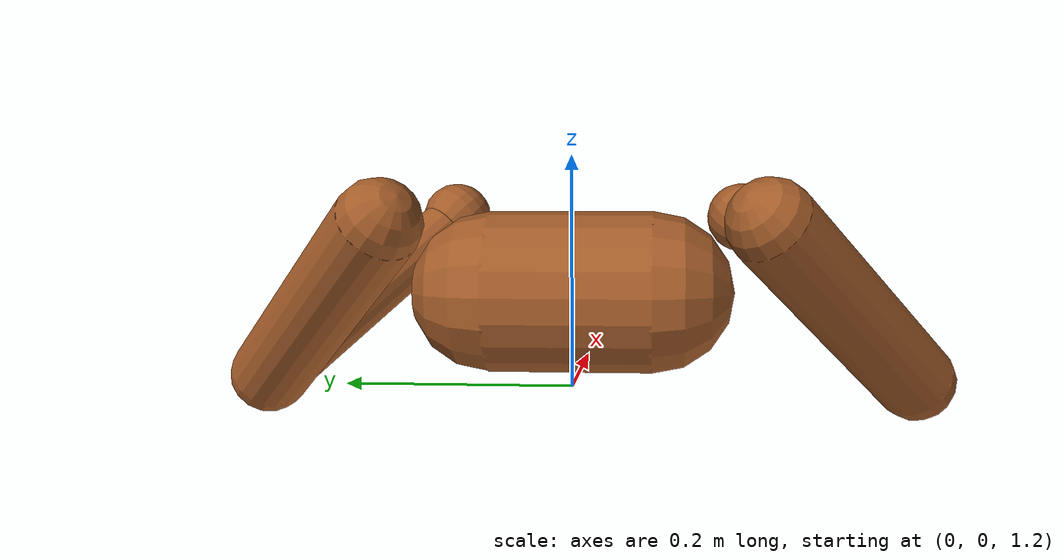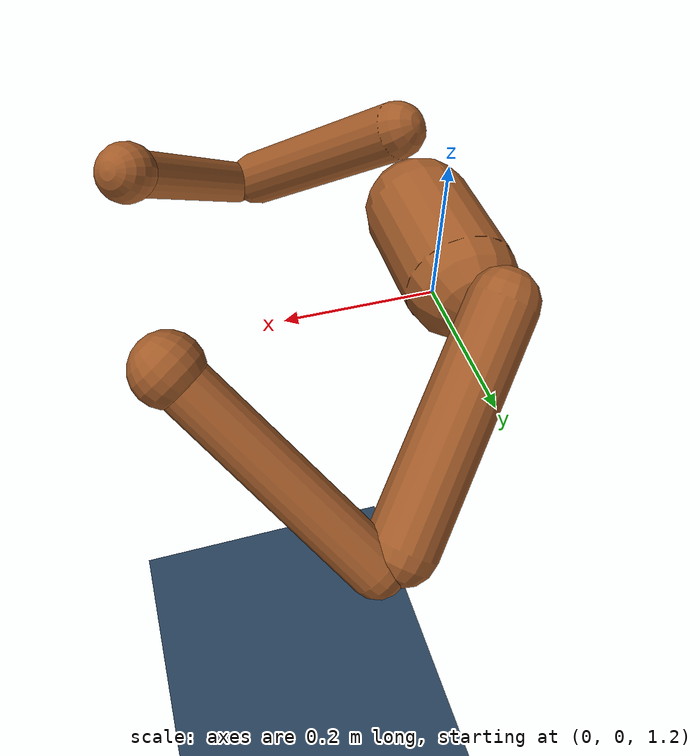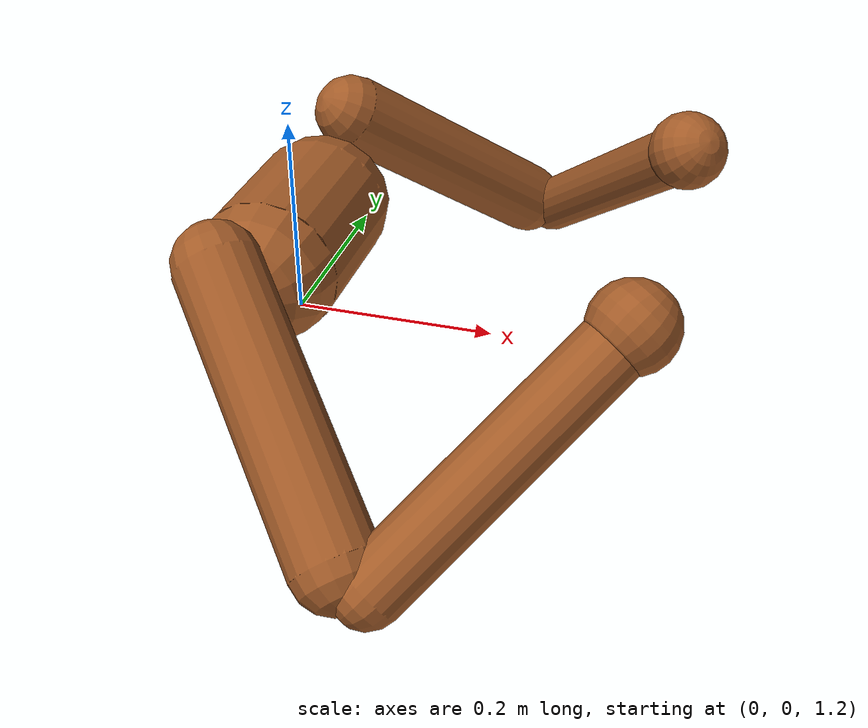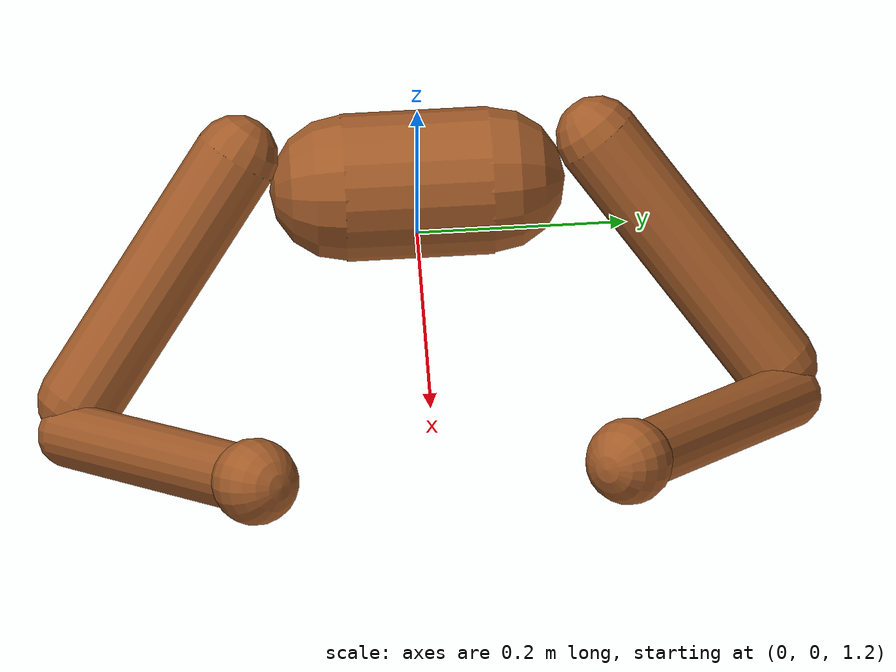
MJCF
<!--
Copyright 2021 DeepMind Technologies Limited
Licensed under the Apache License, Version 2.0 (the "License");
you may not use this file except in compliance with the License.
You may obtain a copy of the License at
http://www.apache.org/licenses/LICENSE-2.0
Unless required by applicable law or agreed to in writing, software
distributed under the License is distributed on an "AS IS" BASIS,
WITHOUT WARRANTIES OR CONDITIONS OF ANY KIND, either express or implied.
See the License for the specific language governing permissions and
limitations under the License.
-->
<mujoco model="Humanoid-Arm">
  <option timestep="0.005"/>

  <visual>
    <map force="0.1" zfar="30"/>
    <rgba haze="0.15 0.25 0.35 1"/>
    <global offwidth="2560" offheight="1440" elevation="-20" azimuth="120"/>
  </visual>

  <statistic center="0 0 0.7"/>

  <asset>
    <texture type="skybox" builtin="gradient" rgb1=".3 .5 .7" rgb2="0 0 0" width="32" height="512"/>
    <texture name="body" type="cube" builtin="flat" mark="cross" width="128" height="128" rgb1="0.8 0.6 0.4" rgb2="0.8 0.6 0.4" markrgb="1 1 1"/>
    <material name="body" texture="body" texuniform="true" rgba="0.8 0.6 .4 1"/>
    <texture name="grid" type="2d" builtin="checker" width="512" height="512" rgb1=".1 .2 .3" rgb2=".2 .3 .4"/>
    <material name="grid" texture="grid" texrepeat="1 1" texuniform="true" reflectance=".2"/>
  </asset>

  <default>
    <motor ctrlrange="-1 1" ctrllimited="true"/>
    <default class="body">
      <!-- 手臂相关geom默认参数 -->
      <geom type="capsule" condim="1" friction=".7" solimp=".9 .99 .003" solref=".015 1" material="body" group="1"/>
      <default class="arm_upper">
        <geom size=".04"/>
      </default>
      <default class="arm_lower">
        <geom size=".031"/>
      </default>
      <default class="hand">
        <geom type="sphere" size=".04"/>
      </default>

      <!-- 手臂相关joint默认参数 -->
      <joint type="hinge" damping=".2" stiffness="1" armature=".01" limited="true" solimplimit="0 .99 .01"/>
      <default class="shoulder">
        <joint range="-85 60"/>
      </default>
      <default class="elbow">
        <joint range="-100 50" stiffness="0"/>
      </default>
    </default>
  </default>

  <worldbody>
    <geom name="floor" size="0 0 .05" type="plane" material="grid" condim="3"/>
    <light name="spotlight" mode="targetbodycom" target="torso" diffuse=".8 .8 .8" specular="0.3 0.3 0.3" pos="0 -6 4" cutoff="30"/>
    <light name="top" pos="0 0 2" mode="trackcom"/>

    <!-- 简化的躯干（作为机械臂的基座）：移除freejoint，默认固定在地面 -->
    <body name="torso" pos="0 0 1.282" childclass="body">
      <camera name="back" pos="-3 0 1" xyaxes="0 -1 0 1 0 2" mode="trackcom"/>
      <camera name="side" pos="0 -3 1" xyaxes="1 0 0 0 1 2" mode="trackcom"/>
      <!-- 核心修改：完全移除freejoint，无关节则默认固定 -->
      <geom name="torso" fromto="0 -.07 0 0 .07 0" size=".07"/>

      <!-- 右臂 -->
      <body name="upper_arm_right" pos="0 -.17 .06">
        <joint name="shoulder1_right" axis="2 1 1"  class="shoulder"/>
        <joint name="shoulder2_right" axis="0 -1 1" class="shoulder"/>
        <geom name="upper_arm_right" fromto="0 0 0 .16 -.16 -.16" class="arm_upper"/>
        <body name="lower_arm_right" pos=".18 -.18 -.18">
          <joint name="elbow_right" axis="0 -1 1" class="elbow"/>
          <geom name="lower_arm_right" fromto=".01 .01 .01 .17 .17 .17" class="arm_lower"/>
          <body name="hand_right" pos=".18 .18 .18">
            <geom name="hand_right" zaxis="1 1 1" class="hand"/>
          </body>
        </body>
      </body>

      <!-- 左臂 -->
      <body name="upper_arm_left" pos="0 .17 .06">
        <joint name="shoulder1_left" axis="-2 1 -1" class="shoulder"/>
        <joint name="shoulder2_left" axis="0 -1 -1"  class="shoulder"/>
        <geom name="upper_arm_left" fromto="0 0 0 .16 .16 -.16" class="arm_upper"/>
        <body name="lower_arm_left" pos=".18 .18 -.18">
          <joint name="elbow_left" axis="0 -1 -1" class="elbow"/>
          <geom name="lower_arm_left" fromto=".01 -.01 .01 .17 -.17 .17" class="arm_lower"/>
          <body name="hand_left" pos=".18 -.18 .18">
            <geom name="hand_left" zaxis="1 -1 1" class="hand"/>
          </body>
        </body>
      </body>
    </body>
  </worldbody>

  <!-- 手臂相关执行器 -->
  <actuator>
    <motor name="shoulder1_right" gear="20"  joint="shoulder1_right"/>
    <motor name="shoulder2_right" gear="20"  joint="shoulder2_right"/>
    <motor name="elbow_right"     gear="40"  joint="elbow_right"/>
    <motor name="shoulder1_left"  gear="20"  joint="shoulder1_left"/>
    <motor name="shoulder2_left"  gear="20"  joint="shoulder2_left"/>
    <motor name="elbow_left"      gear="40"  joint="elbow_left"/>
  </actuator>
</mujoco>
